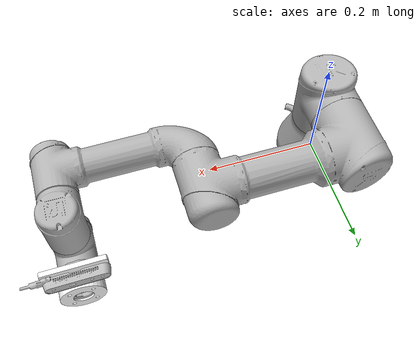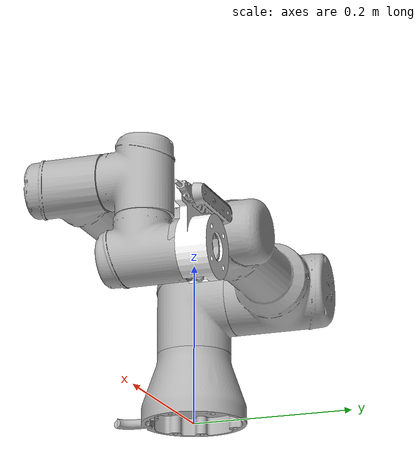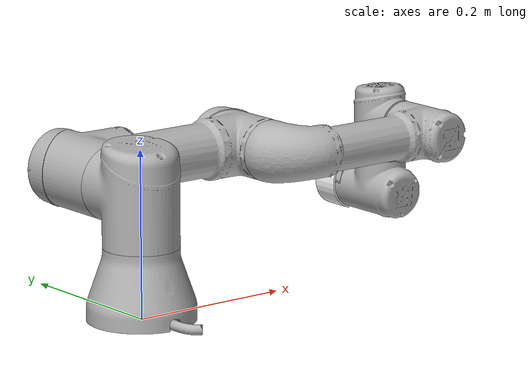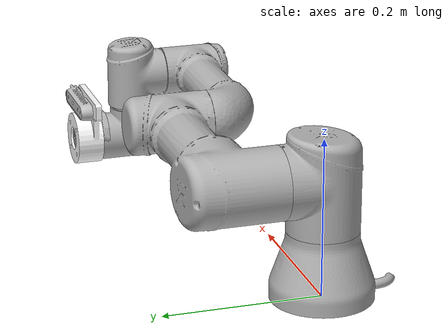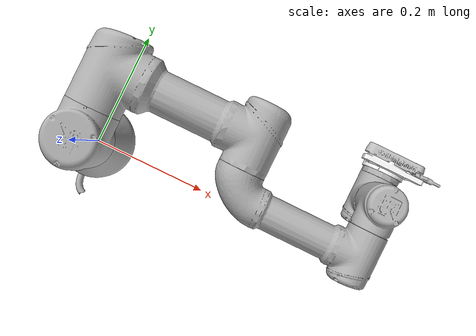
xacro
<?xml version="1.0"?>
<robot xmlns:xacro="http://wiki.ros.org/xacro"
       name="ur3" >

  <xacro:arg name="transmission_hw_interface" default="hardware_interface/PositionJointInterface"/>

  <!-- common stuff -->
  <xacro:include filename="$(find ur_description)/urdf/common.gazebo.xacro" />

  <!-- ur3 -->
  <xacro:include filename="$(find ur_description)/urdf/ur3.urdf.xacro" />

  <!-- arm -->
  <xacro:ur3_robot prefix="" joint_limited="true"
    shoulder_pan_lower_limit="${-17*pi/18}" shoulder_pan_upper_limit="${17*pi/18}"
    shoulder_lift_lower_limit="${-pi}" shoulder_lift_upper_limit="${0}"
    elbow_joint_lower_limit="${-3*pi/4}" elbow_joint_upper_limit="${3*pi/4}"
    wrist_1_lower_limit="${-5*pi/4}" wrist_1_upper_limit="${pi/4}"
    wrist_2_lower_limit="${-17*pi/18}" wrist_2_upper_limit="${17*pi/18}"
    wrist_3_lower_limit="${-pi}" wrist_3_upper_limit="${pi}"
    transmission_hw_interface="$(arg transmission_hw_interface)"
  />

  <link name="world" />

  <joint name="world_joint" type="fixed">
    <parent link="world" />
    <child link = "base_link" />
    <origin xyz="0.0 0.0 0.0" rpy="0.0 0.0 0.0" />
  </joint>

</robot>

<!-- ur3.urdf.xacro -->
<robot xmlns:xacro="http://wiki.ros.org/xacro">

<!--
  Author: Felix Messmer
-->

  <xacro:include filename="$(find ur_description)/urdf/ur.transmission.xacro" />
  <xacro:include filename="$(find ur_description)/urdf/ur.gazebo.xacro" />

   <xacro:macro name="cylinder_inertial" params="radius length mass *origin">
    <inertial>
      <mass value="${mass}" />
      <xacro:insert_block name="origin" />
      <inertia ixx="${0.0833333 * mass * (3 * radius * radius + length * length)}" ixy="0.0" ixz="0.0"
        iyy="${0.0833333 * mass * (3 * radius * radius + length * length)}" iyz="0.0"
        izz="${0.5 * mass * radius * radius}" />
    </inertial>
  </xacro:macro>

  <xacro:macro name="ur3_robot" params="prefix joint_limited
    shoulder_pan_lower_limit:=${-pi}    shoulder_pan_upper_limit:=${pi}
    shoulder_lift_lower_limit:=${-pi}    shoulder_lift_upper_limit:=${pi}
    elbow_joint_lower_limit:=${-pi}    elbow_joint_upper_limit:=${pi}
    wrist_1_lower_limit:=${-pi}    wrist_1_upper_limit:=${pi}
    wrist_2_lower_limit:=${-pi}    wrist_2_upper_limit:=${pi}
    wrist_3_lower_limit:=${-pi}    wrist_3_upper_limit:=${pi}
    transmission_hw_interface:=hardware_interface/PositionJointInterface
    safety_limits:=false safety_pos_margin:=0.15
    safety_k_position:=20">

    <!-- Inertia parameters -->
    <xacro:property name="base_mass" value="2.0" />  <!-- This mass might be incorrect -->
    <xacro:property name="shoulder_mass" value="2.0" />
    <xacro:property name="upper_arm_mass" value="3.42" />
    <xacro:property name="forearm_mass" value="1.26" />
    <xacro:property name="wrist_1_mass" value="0.8" />
    <xacro:property name="wrist_2_mass" value="0.8" />
    <xacro:property name="wrist_3_mass" value="0.35" />

    <xacro:property name="shoulder_cog" value="0.0 -0.02 0.0" />
    <xacro:property name="upper_arm_cog" value="0.13 0.0 0.1157" />
    <xacro:property name="forearm_cog" value="0.05 0.0 0.0238" />
    <xacro:property name="wrist_1_cog" value="0.0 0.0 0.01" />
    <xacro:property name="wrist_2_cog" value="0.0 0.0 0.01" />
    <xacro:property name="wrist_3_cog" value="0.0 0.0 -0.02" />

    <!-- Kinematic model -->
    <!-- Properties from urcontrol.conf -->
    <xacro:property name="d1" value="0.1519" />
    <xacro:property name="a2" value="-0.24365" />
    <xacro:property name="a3" value="-0.21325" />
    <xacro:property name="d4" value="0.11235" />
    <xacro:property name="d5" value="0.08535" />
    <xacro:property name="d6" value="0.0819" />

    <!-- Arbitrary offsets for shoulder/elbow joints -->
    <xacro:property name="shoulder_offset" value="0.1198" />  <!-- measured from model -->
    <xacro:property name="elbow_offset" value="-0.0925" /> <!-- measured from model -->

    <!-- link lengths used in model -->
    <xacro:property name="shoulder_height" value="${d1}" />
    <xacro:property name="upper_arm_length" value="${-a2}" />
    <xacro:property name="forearm_length" value="${-a3}" />
    <xacro:property name="wrist_1_length" value="${d4 - elbow_offset - shoulder_offset}" />
    <xacro:property name="wrist_2_length" value="${d5}" />
    <xacro:property name="wrist_3_length" value="${d6}" />

    <link name="${prefix}base_link" >
      <visual>
        <geometry>
          <mesh filename="package://ur_description/meshes/ur3/visual/base.dae"/>
        </geometry>
        <material name="LightGrey">
          <color rgba="0.7 0.7 0.7 1.0"/>
        </material>
      </visual>
      <collision>
        <geometry>
          <mesh filename="package://ur_description/meshes/ur3/collision/base.stl"/>
        </geometry>
      </collision>
      <xacro:cylinder_inertial radius="0.075" length="0.038" mass="${base_mass}">
        <origin xyz="0.0 0.0 0.0" rpy="0 0 0" />
      </xacro:cylinder_inertial>
    </link>

    <joint name="${prefix}shoulder_pan_joint" type="revolute">
      <parent link="${prefix}base_link" />
      <child link = "${prefix}shoulder_link" />
      <origin xyz="0.0 0.0 ${shoulder_height}" rpy="0.0 0.0 0.0" />
      <axis xyz="0 0 1" />
      <xacro:unless value="${joint_limited}">
        <limit lower="${-2.0 * pi}" upper="${2.0 * pi}" effort="330.0" velocity="2.16"/>
        <xacro:if value="${safety_limits}">
          <safety_controller soft_lower_limit="${-2.0 * pi + safety_pos_margin}" soft_upper_limit="${2.0 * pi - safety_pos_margin}" k_position="${safety_k_position}" k_velocity="0.0"/>
        </xacro:if>
      </xacro:unless>
      <xacro:if value="${joint_limited}">
        <limit lower="${shoulder_pan_lower_limit}" upper="${shoulder_pan_upper_limit}" effort="330.0" velocity="2.16"/>
        <xacro:if value="${safety_limits}">
          <safety_controller soft_lower_limit="${shoulder_pan_lower_limit + safety_pos_margin}" soft_upper_limit="${shoulder_pan_upper_limit - safety_pos_margin}" k_position="${safety_k_position}" k_velocity="0.0"/>
        </xacro:if>
      </xacro:if>
      <dynamics damping="0.0" friction="0.0"/>
    </joint>

    <link name="${prefix}shoulder_link">
      <visual>
        <geometry>
          <mesh filename="package://ur_description/meshes/ur3/visual/shoulder.dae"/>
        </geometry>
        <material name="LightGrey">
          <color rgba="0.7 0.7 0.7 1.0"/>
        </material>
      </visual>
      <collision>
        <geometry>
          <mesh filename="package://ur_description/meshes/ur3/collision/shoulder.stl"/>
        </geometry>
      </collision>
      <xacro:cylinder_inertial radius="0.075" length="0.178" mass="${shoulder_mass}">
        <origin xyz="0.0 0.0 0.0" rpy="0 0 0" />
      </xacro:cylinder_inertial>
    </link>

    <joint name="${prefix}shoulder_lift_joint" type="revolute">
      <parent link="${prefix}shoulder_link" />
      <child link = "${prefix}upper_arm_link" />
      <origin xyz="0.0 ${shoulder_offset} 0.0" rpy="0.0 ${pi / 2.0} 0.0" />
      <axis xyz="0 1 0" />
      <xacro:unless value="${joint_limited}">
        <limit lower="${-2.0 * pi}" upper="${2.0 * pi}" effort="330.0" velocity="2.16"/>
        <xacro:if value="${safety_limits}">
          <safety_controller soft_lower_limit="${-2.0 * pi + safety_pos_margin}" soft_upper_limit="${2.0 * pi - safety_pos_margin}" k_position="${safety_k_position}" k_velocity="0.0"/>
        </xacro:if>
      </xacro:unless>
      <xacro:if value="${joint_limited}">
        <limit lower="${shoulder_lift_lower_limit}" upper="${shoulder_lift_upper_limit}" effort="330.0" velocity="2.16"/>
        <xacro:if value="${safety_limits}">
          <safety_controller soft_lower_limit="${shoulder_lift_lower_limit + safety_pos_margin}" soft_upper_limit="${shoulder_lift_upper_limit - safety_pos_margin}" k_position="${safety_k_position}" k_velocity="0.0"/>
        </xacro:if>
      </xacro:if>
      <dynamics damping="0.0" friction="0.0"/>
    </joint>

    <link name="${prefix}upper_arm_link">
      <visual>
        <geometry>
          <mesh filename="package://ur_description/meshes/ur3/visual/upperarm.dae"/>
        </geometry>
        <material name="LightGrey">
          <color rgba="0.7 0.7 0.7 1.0"/>
        </material>
      </visual>
      <collision>
        <geometry>
          <mesh filename="package://ur_description/meshes/ur3/collision/upperarm.stl"/>
        </geometry>
      </collision>
      <xacro:cylinder_inertial radius="0.075" length="${-a2}" mass="${upper_arm_mass}">
        <origin xyz="0.0 0.0 ${-a2/2.0}" rpy="0 0 0" />
      </xacro:cylinder_inertial>
    </link>

    <joint name="${prefix}elbow_joint" type="revolute">
      <parent link="${prefix}upper_arm_link" />
      <child link = "${prefix}forearm_link" />
      <origin xyz="0.0 ${elbow_offset} ${upper_arm_length}" rpy="0.0 0.0 0.0" />
      <axis xyz="0 1 0" />
      <xacro:unless value="${joint_limited}">
        <limit lower="${-pi}" upper="${pi}" effort="150.0" velocity="3.15"/>
        <xacro:if value="${safety_limits}">
          <safety_controller soft_lower_limit="${-2.0 * pi + safety_pos_margin}" soft_upper_limit="${2.0 * pi - safety_pos_margin}" k_position="${safety_k_position}" k_velocity="0.0"/>
        </xacro:if>
      </xacro:unless>
      <xacro:if value="${joint_limited}">
        <limit lower="${elbow_joint_lower_limit}" upper="${elbow_joint_upper_limit}" effort="150.0" velocity="3.15"/>
        <xacro:if value="${safety_limits}">
          <safety_controller soft_lower_limit="${elbow_joint_lower_limit + safety_pos_margin}" soft_upper_limit="${elbow_joint_upper_limit - safety_pos_margin}" k_position="${safety_k_position}" k_velocity="0.0"/>
        </xacro:if>
      </xacro:if>
      <dynamics damping="0.0" friction="0.0"/>
    </joint>

    <link name="${prefix}forearm_link">
      <visual>
         <geometry>
          <mesh filename="package://ur_description/meshes/ur3/visual/forearm.dae"/>
        </geometry>
        <material name="LightGrey">
          <color rgba="0.7 0.7 0.7 1.0"/>
        </material>
      </visual>
      <collision>
        <geometry>
          <mesh filename="package://ur_description/meshes/ur3/collision/forearm.stl"/>
        </geometry>
      </collision>
      <xacro:cylinder_inertial radius="0.075" length="${-a3}" mass="${forearm_mass}">
        <origin xyz="0.0 0.0 ${-a3/2.0}" rpy="0 0 0" />
      </xacro:cylinder_inertial>
    </link>

    <joint name="${prefix}wrist_1_joint" type="revolute">
      <parent link="${prefix}forearm_link" />
      <child link = "${prefix}wrist_1_link" />
      <origin xyz="0.0 0.0 ${forearm_length}" rpy="0.0 ${pi / 2.0} 0.0" />
      <axis xyz="0 1 0" />
      <xacro:unless value="${joint_limited}">
        <limit lower="${-2.0 * pi}" upper="${2.0 * pi}" effort="54.0" velocity="3.2"/>
        <xacro:if value="${safety_limits}">
          <safety_controller soft_lower_limit="${-2.0 * pi + safety_pos_margin}" soft_upper_limit="${2.0 * pi - safety_pos_margin}" k_position="${safety_k_position}" k_velocity="0.0"/>
        </xacro:if>
      </xacro:unless>
      <xacro:if value="${joint_limited}">
        <limit lower="${wrist_1_lower_limit}" upper="${wrist_1_upper_limit}" effort="54.0" velocity="3.2"/>
        <xacro:if value="${safety_limits}">
          <safety_controller soft_lower_limit="${wrist_1_lower_limit + safety_pos_margin}" soft_upper_limit="${wrist_1_upper_limit - safety_pos_margin}" k_position="${safety_k_position}" k_velocity="0.0"/>
        </xacro:if>
      </xacro:if>
      <dynamics damping="0.0" friction="0.0"/>
    </joint>

    <link name="${prefix}wrist_1_link">
      <visual>
        <geometry>
          <mesh filename="package://ur_description/meshes/ur3/visual/wrist1.dae"/>
        </geometry>
        <material name="LightGrey">
          <color rgba="0.7 0.7 0.7 1.0"/>
        </material>
      </visual>
      <collision>
        <geometry>
          <mesh filename="package://ur_description/meshes/ur3/collision/wrist1.stl"/>
        </geometry>
      </collision>
      <xacro:cylinder_inertial radius="0.075" length="0.12" mass="${wrist_1_mass}">
        <origin xyz="0.0 ${wrist_1_length} 0.0" rpy="0 0 0" />
      </xacro:cylinder_inertial>
    </link>

    <joint name="${prefix}wrist_2_joint" type="revolute">
      <parent link="${prefix}wrist_1_link" />
      <child link = "${prefix}wrist_2_link" />
      <origin xyz="0.0 ${wrist_1_length} 0.0" rpy="0.0 0.0 0.0" />
      <axis xyz="0 0 1" />
      <xacro:unless value="${joint_limited}">
        <limit lower="${-2.0 * pi}" upper="${2.0 * pi}" effort="54.0" velocity="3.2"/>
        <xacro:if value="${safety_limits}">
          <safety_controller soft_lower_limit="${-2.0 * pi + safety_pos_margin}" soft_upper_limit="${2.0 * pi - safety_pos_margin}" k_position="${safety_k_position}" k_velocity="0.0"/>
        </xacro:if>
      </xacro:unless>
      <xacro:if value="${joint_limited}">
        <limit lower="${wrist_2_lower_limit}" upper="${wrist_2_upper_limit}" effort="54.0" velocity="3.2"/>
        <xacro:if value="${safety_limits}">
          <safety_controller soft_lower_limit="${wrist_2_lower_limit + safety_pos_margin}" soft_upper_limit="${wrist_2_upper_limit - safety_pos_margin}" k_position="${safety_k_position}" k_velocity="0.0"/>
        </xacro:if>
      </xacro:if>
      <dynamics damping="0.0" friction="0.0"/>
    </joint>

    <link name="${prefix}wrist_2_link">
      <visual>
        <geometry>
          <mesh filename="package://ur_description/meshes/ur3/visual/wrist2.dae"/>
        </geometry>
        <material name="LightGrey">
          <color rgba="0.7 0.7 0.7 1.0"/>
        </material>
      </visual>
      <collision>
        <geometry>
          <mesh filename="package://ur_description/meshes/ur3/collision/wrist2.stl"/>
        </geometry>
      </collision>
      <xacro:cylinder_inertial radius="0.075" length="0.12" mass="${wrist_2_mass}">
        <origin xyz="0.0 0.0 ${wrist_2_length}" rpy="0 0 0" />
      </xacro:cylinder_inertial>
    </link>

    <joint name="${prefix}wrist_3_joint" type="revolute">
      <parent link="${prefix}wrist_2_link" />
      <child link = "${prefix}wrist_3_link" />
      <origin xyz="0.0 0.0 ${wrist_2_length}" rpy="0.0 0.0 0.0" />
      <axis xyz="0 1 0" />
      <xacro:unless value="${joint_limited}">
        <limit lower="${-2.0 * pi}" upper="${2.0 * pi}" effort="54.0" velocity="3.2"/>
        <xacro:if value="${safety_limits}">
          <safety_controller soft_lower_limit="${-2.0 * pi + safety_pos_margin}" soft_upper_limit="${2.0 * pi - safety_pos_margin}" k_position="${safety_k_position}" k_velocity="0.0"/>
        </xacro:if>
      </xacro:unless>
      <xacro:if value="${joint_limited}">
        <limit lower="${wrist_3_lower_limit}" upper="${wrist_3_upper_limit}" effort="54.0" velocity="3.2"/>
        <xacro:if value="${safety_limits}">
          <safety_controller soft_lower_limit="${wrist_3_lower_limit + safety_pos_margin}" soft_upper_limit="${wrist_3_upper_limit - safety_pos_margin}" k_position="${safety_k_position}" k_velocity="0.0"/>
        </xacro:if>
      </xacro:if>
      <dynamics damping="0.0" friction="0.0"/>
    </joint>

    <link name="${prefix}wrist_3_link">
      <visual>
        <geometry>
          <mesh filename="package://ur_description/meshes/ur3/visual/wrist3.dae"/>
        </geometry>
        <material name="LightGrey">
          <color rgba="0.7 0.7 0.7 1.0"/>
        </material>
      </visual>
      <collision>
        <geometry>
          <mesh filename="package://ur_description/meshes/ur3/collision/wrist3.stl"/>
        </geometry>
      </collision>
      <xacro:cylinder_inertial radius="0.032" length="0.04" mass="${wrist_3_mass}">
        <origin xyz="0.0 ${wrist_3_length - 0.02} 0.0" rpy="${pi/2} 0 0" />
      </xacro:cylinder_inertial>
    </link>

    <joint name="${prefix}ee_fixed_joint" type="fixed">
      <parent link="${prefix}wrist_3_link" />
      <child link = "${prefix}ee_link" />
      <origin xyz="0.0 ${wrist_3_length} 0.0" rpy="0.0 0.0 ${pi/2.0}" />
    </joint>

    <link name="${prefix}ee_link">
      <collision>
        <geometry>
          <box size="0.01 0.01 0.01"/>
        </geometry>
        <origin rpy="0 0 0" xyz="-0.01 0 0"/>
      </collision>
    </link>

    <xacro:ur_arm_transmission prefix="${prefix}" hw_interface="${transmission_hw_interface}" />
    <xacro:ur_arm_gazebo prefix="${prefix}" />

    <!-- ROS base_link to UR 'Base' Coordinates transform -->
    <link name="${prefix}base"/>
    <joint name="${prefix}base_link-base_fixed_joint" type="fixed">
      <!-- NOTE: this rotation is only needed as long as base_link itself is
                 not corrected wrt the real robot (ie: rotated over 180
                 degrees)
      -->
      <origin xyz="0 0 0" rpy="0 0 ${-pi}"/>
      <parent link="${prefix}base_link"/>
      <child link="${prefix}base"/>
    </joint>

    <!-- Frame coincident with all-zeros TCP on UR controller -->
    <link name="${prefix}tool0"/>
    <joint name="${prefix}wrist_3_link-tool0_fixed_joint" type="fixed">
      <origin xyz="0 ${wrist_3_length} 0" rpy="${pi/-2.0} 0 0"/>
      <parent link="${prefix}wrist_3_link"/>
      <child link="${prefix}tool0"/>
    </joint>

  <!-- hand_camera -->
  <link name="camera_base_link">
    <inertial>
      <origin xyz="0.00104677176561555 -0.0218960907674857 -0.0156368419811985" rpy="0 0 0" />
      <mass value="0.0484545630468819" />
      <inertia  ixx="4.19793069441571E-05"  ixy="1.29981320201142E-07"  ixz="6.72560291455767E-08"
                iyy="3.68292321506223E-05"  iyz="-6.88066472385022E-06"
                izz="6.86687322844385E-05" />
    </inertial>
    <visual>
      <origin xyz="0 0 0" rpy="0 0 ${pi}" />
      <geometry>
        <mesh filename="package://ur_description/meshes/ur3/collision/camera_base_link.STL" />
      </geometry>
      <material name="">
        <color  rgba="1 1 1 1" />
      </material>
    </visual>
    <collision>
      <origin xyz="0 0 0" rpy="0 0 0" />
      <geometry>
        <mesh filename="package://ur_description/meshes/ur3/collision/camera_base_link.STL" />
      </geometry>
    </collision>
  </link>

  <joint  name="camera_base_joint"  type="fixed">
    <origin xyz="0.0 0.0 0.0"  rpy="0 0 0" />
    <parent link="tool0" />
    <child  link="camera_base_link" />
    <axis xyz="0 0 0" />
    <safety_controller  k_velocity="0" />
  </joint>

  <link name="hand_camera_link">
    <inertial>
      <origin xyz="-0.013967679598446 -0.000346404022045277 -0.00855687282390438" rpy="0 0 0" />
      <mass value="0.0105220157522583" />
      <inertia  ixx="6.56726961439111E-07"  ixy="3.36774088493176E-09"  ixz="1.10137141282441E-07"
                iyy="7.04478372578252E-06"  iyz="3.52475062132005E-09"
                izz="7.48491927800553E-06" />
    </inertial>
    <visual>
      <origin xyz="0 0 0" rpy="0 0 0" />
      <geometry>
        <mesh filename="package://ur_description/meshes/ur3/collision/hand_camera_link.STL" />
      </geometry>
      <material name="">
        <color  rgba="0.752941176470588 0.752941176470588 0.752941176470588 1" />
      </material>
    </visual>
    <collision>
      <origin xyz="0 0 0" rpy="0 0 0" />
      <geometry>
        <mesh filename="package://ur_description/meshes/ur3/collision/hand_camera_link.STL" />
      </geometry>
    </collision>
  </link>

  <joint  name="hand_camera_joint"  type="fixed">
    <origin xyz="0.00111637044362657 0.048499999996743 0.00205000007705258"  rpy="0 0 0" />
    <parent link="camera_base_link" />
    <child  link="hand_camera_link" />
    <axis xyz="0 0 0" />
    <safety_controller  k_velocity="0" />
  </joint>

  </xacro:macro>
</robot>
